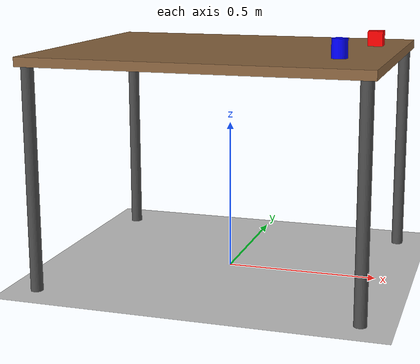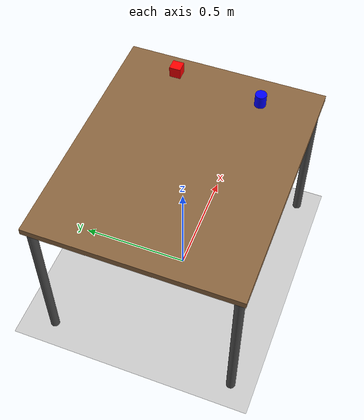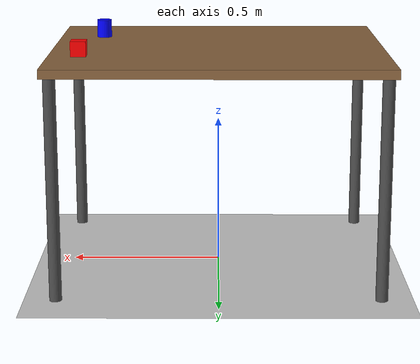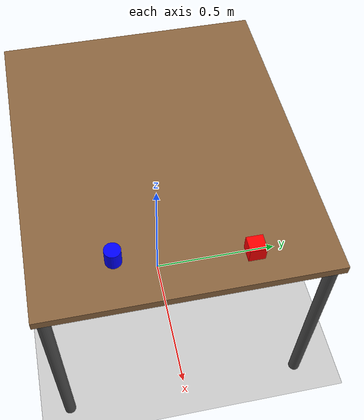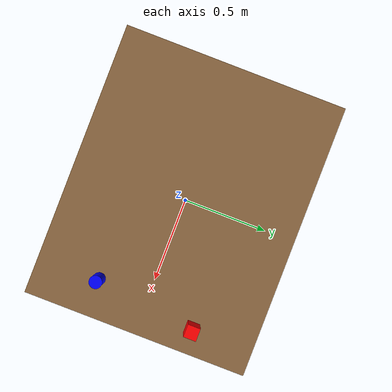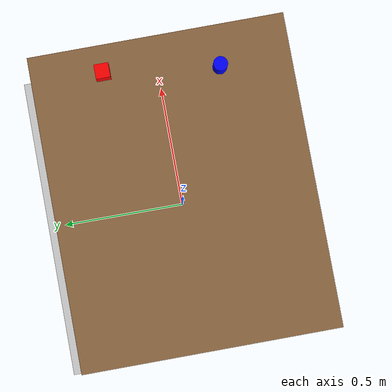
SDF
<?xml version="1.0" ?>
<sdf version="1.6">
  <world name="default">

    <include>
      <uri>model://ground_plane</uri>
    </include>

    <include>
      <uri>model://sun</uri>
    </include>

    <model name="table">
      <static>true</static>
      <pose>0 0 0.735 0 0 0</pose>
      <link name="link">
        <collision name="top_collision">
          <geometry>
            <box><size>1.1 0.9 0.03</size></box>
          </geometry>
        </collision>
        <visual name="top_visual">
          <geometry>
            <box><size>1.1 0.9 0.03</size></box>
          </geometry>
          <material>
            <ambient>0.55 0.4 0.25 1</ambient>
            <diffuse>0.55 0.4 0.25 1</diffuse>
          </material>
        </visual>

        <collision name="leg1_collision">
          <pose>0.52 0.42 -0.375 0 0 0</pose>
          <geometry><cylinder><radius>0.02</radius><length>0.72</length></cylinder></geometry>
        </collision>
        <visual name="leg1_visual">
          <pose>0.52 0.42 -0.375 0 0 0</pose>
          <geometry><cylinder><radius>0.02</radius><length>0.72</length></cylinder></geometry>
          <material><ambient>0.3 0.3 0.3 1</ambient><diffuse>0.3 0.3 0.3 1</diffuse></material>
        </visual>

        <collision name="leg2_collision">
          <pose>-0.52 0.42 -0.375 0 0 0</pose>
          <geometry><cylinder><radius>0.02</radius><length>0.72</length></cylinder></geometry>
        </collision>
        <visual name="leg2_visual">
          <pose>-0.52 0.42 -0.375 0 0 0</pose>
          <geometry><cylinder><radius>0.02</radius><length>0.72</length></cylinder></geometry>
          <material><ambient>0.3 0.3 0.3 1</ambient><diffuse>0.3 0.3 0.3 1</diffuse></material>
        </visual>

        <collision name="leg3_collision">
          <pose>0.52 -0.42 -0.375 0 0 0</pose>
          <geometry><cylinder><radius>0.02</radius><length>0.72</length></cylinder></geometry>
        </collision>
        <visual name="leg3_visual">
          <pose>0.52 -0.42 -0.375 0 0 0</pose>
          <geometry><cylinder><radius>0.02</radius><length>0.72</length></cylinder></geometry>
          <material><ambient>0.3 0.3 0.3 1</ambient><diffuse>0.3 0.3 0.3 1</diffuse></material>
        </visual>

        <collision name="leg4_collision">
          <pose>-0.52 -0.42 -0.375 0 0 0</pose>
          <geometry><cylinder><radius>0.02</radius><length>0.72</length></cylinder></geometry>
        </collision>
        <visual name="leg4_visual">
          <pose>-0.52 -0.42 -0.375 0 0 0</pose>
          <geometry><cylinder><radius>0.02</radius><length>0.72</length></cylinder></geometry>
          <material><ambient>0.3 0.3 0.3 1</ambient><diffuse>0.3 0.3 0.3 1</diffuse></material>
        </visual>
      </link>
    </model>

    <!-- Red Cube: farther out from the robot's base, well clear of it -->
    <model name="red_cube">
      <pose>0.45 0.2 0.775 0 0 0</pose>
      <link name="link">
        <inertial><mass>0.1</mass></inertial>
        <collision name="collision">
          <geometry><box><size>0.05 0.05 0.05</size></box></geometry>
        </collision>
        <visual name="visual">
          <geometry><box><size>0.05 0.05 0.05</size></box></geometry>
          <material><ambient>1 0 0 1</ambient><diffuse>1 0 0 1</diffuse></material>
        </visual>
      </link>
    </model>

    <!-- Blue Cylinder -->
    <model name="blue_cylinder">
      <pose>0.4 -0.2 0.78 0 0 0</pose>
      <link name="link">
        <inertial><mass>0.1</mass></inertial>
        <collision name="collision">
          <geometry><cylinder><radius>0.025</radius><length>0.06</length></cylinder></geometry>
        </collision>
        <visual name="visual">
          <geometry><cylinder><radius>0.025</radius><length>0.06</length></cylinder></geometry>
          <material><ambient>0 0 1 1</ambient><diffuse>0 0 1 1</diffuse></material>
        </visual>
      </link>
    </model>

  </world>
</sdf>
